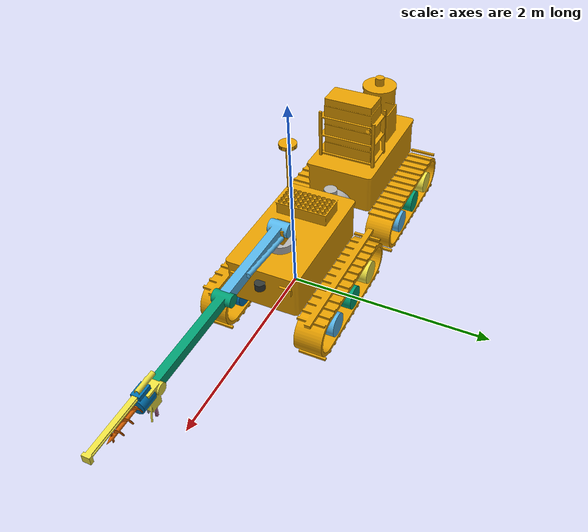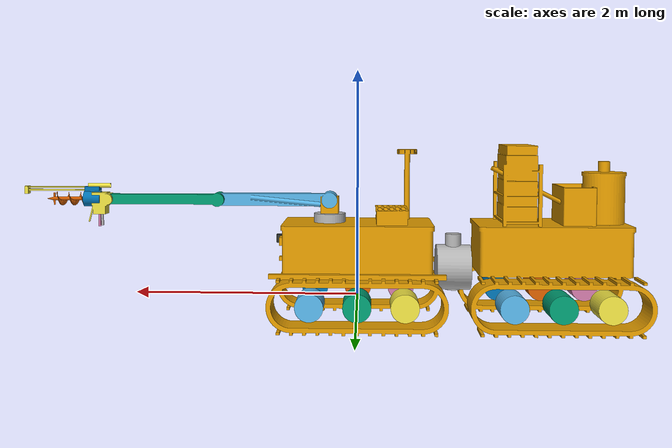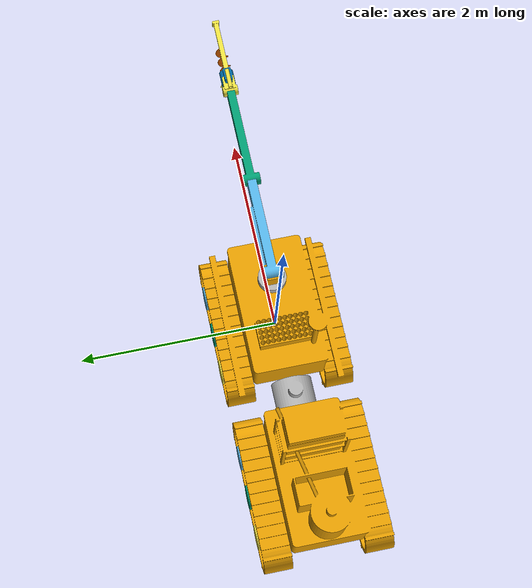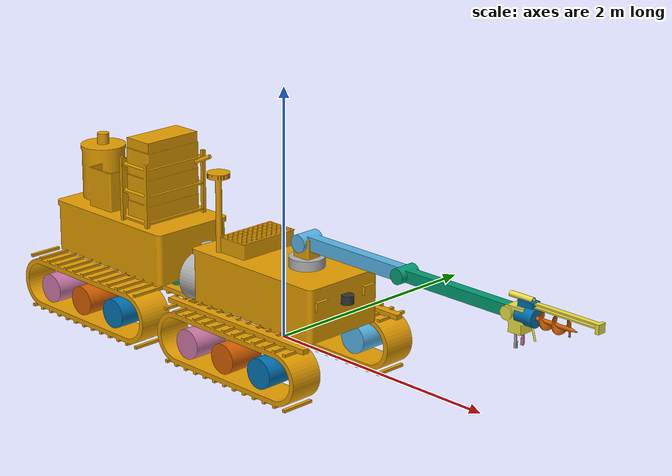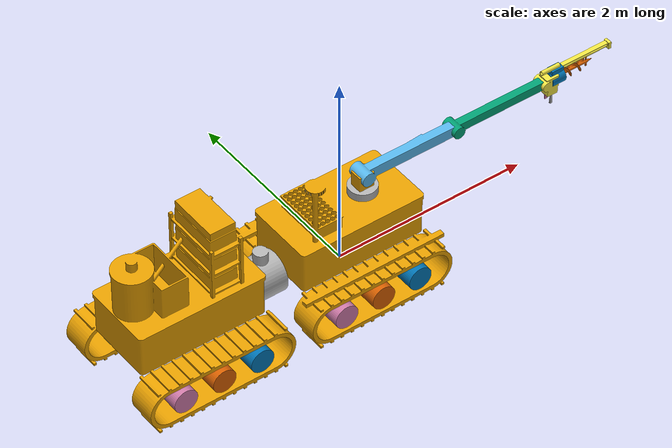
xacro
<?xml version="1.0"?>
<robot name="pahadi" xmlns:xacro="http://www.ros.org/wiki/xacro">
  <xacro:arg name="ns" default="pahadi"/>
  <xacro:arg name="soil_map" default=""/>
  <xacro:arg name="lidar" default="true"/>
  <xacro:arg name="gnss_sigma" default="0.02"/>
  <xacro:property name="ns" value="$(arg ns)"/>
  <xacro:property name="WR" value="0.21"/>
  <xacro:property name="R" value="pahadi"/>
  <xacro:arg name="inspect_cam" default="false"/>
  <xacro:property name="L_UP" value="1.0"/>
  <xacro:property name="L_FORE" value="1.0"/>
  <xacro:include filename="$(find fs_description)/urdf/common.xacro"/>

  <!-- ===================== front module ===================== -->
  <link name="base_link">
    <xacro:box_inertial m="480" x="1.3" y="1.3" z="0.6"><origin xyz="0 0 0.3"/></xacro:box_inertial>
    <xacro:cbox xyz="0 0 0.42" size="1.3 0.72 0.4"/>
    <xacro:mesh_visual robot="${R}" link="base_link"/>
  </link>
  <xacro:wheel effort="250" robot="${R}" name="fl1" parent="base_link" xyz="0.4 0.5 0" r="${WR}" w="0.28" m="12" shape="sphere" rim="fs_steel"/>
  <xacro:wheel effort="250" robot="${R}" name="fl2" parent="base_link" xyz="0.0 0.5 0" r="${WR}" w="0.28" m="12" shape="sphere" rim="fs_steel"/>
  <xacro:wheel effort="250" robot="${R}" name="fl3" parent="base_link" xyz="-0.4 0.5 0" r="${WR}" w="0.28" m="12" shape="sphere" rim="fs_steel"/>
  <xacro:wheel effort="250" robot="${R}" name="fr1" parent="base_link" xyz="0.4 -0.5 0" r="${WR}" w="0.28" m="12" shape="sphere" rim="fs_steel"/>
  <xacro:wheel effort="250" robot="${R}" name="fr2" parent="base_link" xyz="0.0 -0.5 0" r="${WR}" w="0.28" m="12" shape="sphere" rim="fs_steel"/>
  <xacro:wheel effort="250" robot="${R}" name="fr3" parent="base_link" xyz="-0.4 -0.5 0" r="${WR}" w="0.28" m="12" shape="sphere" rim="fs_steel"/>

  <!-- ===================== articulation (steered: +-30 deg yaw, passive +-15 deg roll) ===================== -->
  <joint name="artic_yaw_joint" type="revolute">
    <parent link="base_link"/><child link="artic_link"/>
    <origin xyz="-0.85 0 0.25"/><axis xyz="0 0 1"/>
    <limit lower="-0.52" upper="0.52" effort="20000" velocity="1"/><dynamics damping="50"/>
  </joint>
  <link name="artic_link">
    <inertial><mass value="5"/><inertia ixx="0.05" iyy="0.05" izz="0.05" ixy="0" ixz="0" iyz="0"/></inertial>
    <xacro:mesh_visual robot="${R}" link="artic_link"/>
  </link>
  <joint name="artic_roll_joint" type="revolute">
    <parent link="artic_link"/><child link="rear_link"/>
    <origin xyz="0 0 0"/><axis xyz="1 0 0"/>
    <limit lower="-0.26" upper="0.26" effort="5000" velocity="1"/><dynamics damping="300"/>
  </joint>

  <!-- ===================== rear module (payload) ===================== -->
  <link name="rear_link">
    <!-- chassis 380 kg + 3 spare trays + 75 L water (half of 150 L) + 30 kg seed balls -->
    <xacro:box_inertial m="535" x="1.4" y="1.3" z="0.8"><origin xyz="-0.86 0 0.21"/></xacro:box_inertial>
    <xacro:cbox xyz="-0.85 0 0.17" size="1.3 0.72 0.4"/>
    <xacro:mesh_visual robot="${R}" link="rear_link"/>
  </link>
  <xacro:wheel effort="250" robot="${R}" name="rl1" parent="rear_link" xyz="-0.45 0.5 -0.25" r="${WR}" w="0.28" m="12" shape="sphere" rim="fs_steel"/>
  <xacro:wheel effort="250" robot="${R}" name="rl2" parent="rear_link" xyz="-0.85 0.5 -0.25" r="${WR}" w="0.28" m="12" shape="sphere" rim="fs_steel"/>
  <xacro:wheel effort="250" robot="${R}" name="rl3" parent="rear_link" xyz="-1.25 0.5 -0.25" r="${WR}" w="0.28" m="12" shape="sphere" rim="fs_steel"/>
  <xacro:wheel effort="250" robot="${R}" name="rr1" parent="rear_link" xyz="-0.45 -0.5 -0.25" r="${WR}" w="0.28" m="12" shape="sphere" rim="fs_steel"/>
  <xacro:wheel effort="250" robot="${R}" name="rr2" parent="rear_link" xyz="-0.85 -0.5 -0.25" r="${WR}" w="0.28" m="12" shape="sphere" rim="fs_steel"/>
  <xacro:wheel effort="250" robot="${R}" name="rr3" parent="rear_link" xyz="-1.25 -0.5 -0.25" r="${WR}" w="0.28" m="12" shape="sphere" rim="fs_steel"/>

  <!-- ===================== 4-axis arm ===================== -->
  <joint name="arm_base_joint" type="fixed"><parent link="base_link"/><child link="arm_base_link"/><origin xyz="0.25 0 0.65"/></joint>
  <link name="arm_base_link">
    <inertial><mass value="10"/><inertia ixx="0.05" iyy="0.05" izz="0.05" ixy="0" ixz="0" iyz="0"/></inertial>
    <xacro:mesh_visual robot="${R}" link="arm_base_link"/>
  </link>
  <joint name="arm_yaw_joint" type="revolute">
    <parent link="arm_base_link"/><child link="arm_yaw_link"/>
    <origin xyz="0 0 0.08"/><axis xyz="0 0 1"/>
    <limit lower="-3.3" upper="3.3" effort="3000" velocity="1.2"/><dynamics damping="20"/>
  </joint>
  <link name="arm_yaw_link">
    <inertial><origin xyz="0 0 0.07"/><mass value="15"/><inertia ixx="0.1" iyy="0.1" izz="0.1" ixy="0" ixz="0" iyz="0"/></inertial>
    <xacro:mesh_visual robot="${R}" link="arm_yaw_link"/>
  </link>
  <joint name="arm_shoulder_joint" type="revolute">
    <parent link="arm_yaw_link"/><child link="arm_upper_link"/>
    <origin xyz="0 0 0.12"/><axis xyz="0 1 0"/>
    <limit lower="-1.6" upper="1.6" effort="4000" velocity="1.0"/><dynamics damping="20"/>
  </joint>
  <link name="arm_upper_link">
    <inertial><origin xyz="${L_UP/2} 0 0"/><mass value="20"/><inertia ixx="0.05" iyy="1.2" izz="1.2" ixy="0" ixz="0" iyz="0"/></inertial>
    <xacro:mesh_visual robot="${R}" link="arm_upper_link"/>
  </link>
  <joint name="arm_elbow_joint" type="revolute">
    <parent link="arm_upper_link"/><child link="arm_fore_link"/>
    <origin xyz="${L_UP} 0 0"/><axis xyz="0 1 0"/>
    <limit lower="-2.9" upper="2.9" effort="3000" velocity="1.2"/><dynamics damping="15"/>
  </joint>
  <link name="arm_fore_link">
    <inertial><origin xyz="${L_FORE/2} 0 0"/><mass value="15"/><inertia ixx="0.04" iyy="0.9" izz="0.9" ixy="0" ixz="0" iyz="0"/></inertial>
    <xacro:mesh_visual robot="${R}" link="arm_fore_link"/>
  </link>
  <joint name="arm_wrist_joint" type="revolute">
    <parent link="arm_fore_link"/><child link="arm_wrist_link"/>
    <origin xyz="${L_FORE} 0 0"/><axis xyz="0 1 0"/>
    <limit lower="-2.9" upper="2.9" effort="2000" velocity="1.5"/><dynamics damping="10"/>
  </joint>
  <link name="arm_wrist_link">
    <inertial><origin xyz="0.07 0 0"/><mass value="8"/><inertia ixx="0.02" iyy="0.02" izz="0.02" ixy="0" ixz="0" iyz="0"/></inertial>
    <xacro:mesh_visual robot="${R}" link="arm_wrist_link"/>
  </link>
  <xacro:auger_head robot="${R}" parent="arm_wrist_link" xyz="0.14 0 0" length="0.36" stroke="0.45"
                    feed_axis="1 0 0" spin_axis="1 0 0"/>
  <!-- parallel gripper under the wrist: grasp point at (0.07, 0, -0.18) in arm_wrist_link -->
  <xacro:macro name="grip_finger" params="side y axis">
    <joint name="finger_${side}_joint" type="prismatic">
      <parent link="arm_wrist_link"/><child link="finger_${side}_link"/>
      <origin xyz="0.07 ${y} -0.135"/><axis xyz="0 ${axis} 0"/>
      <limit lower="0" upper="0.02" effort="150" velocity="0.1"/><dynamics damping="2"/>
    </joint>
    <link name="finger_${side}_link">
      <inertial><mass value="0.3"/><inertia ixx="0.0004" iyy="0.0004" izz="0.0001" ixy="0" ixz="0" iyz="0"/></inertial>
      <xacro:mesh_visual robot="${R}" link="finger_${side}_link"/>
    </link>
  </xacro:macro>
  <xacro:grip_finger side="l" y="0.04" axis="-1"/>
  <xacro:grip_finger side="r" y="-0.04" axis="1"/>

  <!-- ===================== sensors ===================== -->
  <xacro:gnss ns="${ns}" parent="base_link" xyz="-0.45 -0.26 1.27" sigma="$(arg gnss_sigma)"/>
  <xacro:imu ns="${ns}" name="imu" parent="base_link" xyz="0 0 0.3"/>
  <xacro:imu ns="${ns}" name="imu_rear" parent="rear_link" xyz="-0.85 0 0.1"/>
  <xacro:if value="$(arg lidar)">
    <xacro:lidar2d ns="${ns}" parent="base_link" xyz="0.68 0 0.5"/>
  </xacro:if>
  <xacro:if value="$(arg inspect_cam)">
    <xacro:inspect_camera ns="${ns}" parent="base_link" xyz="1.7 -2.7 1.9" rpy="0 0.42 2.3" hfov="1.25"/>
  </xacro:if>

  <gazebo>
    <plugin filename="gz-sim-diff-drive-system" name="gz::sim::systems::DiffDrive">
      <left_joint>fl1_joint</left_joint><left_joint>fl2_joint</left_joint><left_joint>fl3_joint</left_joint>
      <left_joint>rl1_joint</left_joint><left_joint>rl2_joint</left_joint><left_joint>rl3_joint</left_joint>
      <right_joint>fr1_joint</right_joint><right_joint>fr2_joint</right_joint><right_joint>fr3_joint</right_joint>
      <right_joint>rr1_joint</right_joint><right_joint>rr2_joint</right_joint><right_joint>rr3_joint</right_joint>
      <wheel_separation>1.0</wheel_separation><wheel_radius>${WR}</wheel_radius>
      <max_linear_acceleration>0.5</max_linear_acceleration><min_linear_acceleration>-0.8</min_linear_acceleration>
      <max_angular_acceleration>0.8</max_angular_acceleration><min_angular_acceleration>-0.8</min_angular_acceleration>
      <max_linear_velocity>0.7</max_linear_velocity><min_linear_velocity>-0.4</min_linear_velocity>
      <max_angular_velocity>0.6</max_angular_velocity><min_angular_velocity>-0.6</min_angular_velocity>
      <topic>/model/${ns}/cmd_vel</topic><odom_topic>/model/${ns}/odometry</odom_topic>
      <tf_topic>/model/${ns}/odometry_tf</tf_topic>
      <frame_id>${ns}/odom</frame_id><child_frame_id>${ns}/base_link</child_frame_id>
      <odom_publish_frequency>30</odom_publish_frequency>
    </plugin>
    <xacro:common_plugins ns="${ns}"/>
    <!-- articulated steering: the navigator commands the yaw angle between the modules -->
    <xacro:pos_controller ns="${ns}" joint="artic_yaw_joint" p="3" vmax="0.4" init="0.0"/>
    <xacro:pos_controller ns="${ns}" joint="arm_yaw_joint" p="3" vmax="0.9" init="0.0"/>
    <xacro:pos_controller ns="${ns}" joint="arm_shoulder_joint" p="3" vmax="0.8" init="-1.35"/>
    <xacro:pos_controller ns="${ns}" joint="arm_elbow_joint" p="3" vmax="0.9" init="2.6"/>
    <xacro:pos_controller ns="${ns}" joint="arm_wrist_joint" p="3" vmax="1.2" init="0.3"/>
    <xacro:pos_controller ns="${ns}" joint="finger_l_joint" p="6" vmax="0.08" init="0.0"/>
    <xacro:pos_controller ns="${ns}" joint="finger_r_joint" p="6" vmax="0.08" init="0.0"/>
    <plugin filename="fs_terramechanics_system" name="fs::Terramechanics">
      <soil_map>$(arg soil_map)</soil_map>
      <topic>/model/${ns}/terramechanics</topic>
      <contact_tolerance>0.06</contact_tolerance>
      <lateral_factor>0.9</lateral_factor>
      <xacro:tm_wheel link="fl1_link" r="${WR}" b="0.28" l="0.37"/>
      <xacro:tm_wheel link="fl2_link" r="${WR}" b="0.28" l="0.37"/>
      <xacro:tm_wheel link="fl3_link" r="${WR}" b="0.28" l="0.37"/>
      <xacro:tm_wheel link="fr1_link" r="${WR}" b="0.28" l="0.37"/>
      <xacro:tm_wheel link="fr2_link" r="${WR}" b="0.28" l="0.37"/>
      <xacro:tm_wheel link="fr3_link" r="${WR}" b="0.28" l="0.37"/>
      <xacro:tm_wheel link="rl1_link" r="${WR}" b="0.28" l="0.37"/>
      <xacro:tm_wheel link="rl2_link" r="${WR}" b="0.28" l="0.37"/>
      <xacro:tm_wheel link="rl3_link" r="${WR}" b="0.28" l="0.37"/>
      <xacro:tm_wheel link="rr1_link" r="${WR}" b="0.28" l="0.37"/>
      <xacro:tm_wheel link="rr2_link" r="${WR}" b="0.28" l="0.37"/>
      <xacro:tm_wheel link="rr3_link" r="${WR}" b="0.28" l="0.37"/>
    </plugin>
    <plugin filename="fs_auger_soil_system" name="fs::AugerSoil">
      <soil_map>$(arg soil_map)</soil_map>
      <feed_joint>auger_feed_joint</feed_joint><spin_joint>auger_spin_joint</spin_joint>
      <tip_link>auger_link</tip_link><reaction_link>arm_wrist_link</reaction_link><tip_offset>0.36 0 0</tip_offset><tool_axis>1 0 0</tool_axis>
      <diameter>0.12</diameter><max_power>2000</max_power><efficiency>0.8</efficiency>
      <max_thrust>2500</max_thrust><max_feed>0.12</max_feed><rpm>110</rpm><max_stroke>0.45</max_stroke>
      <rock_energy>45</rock_energy><pick_efficiency>0.5</pick_efficiency>
      <cmd_topic>/model/${ns}/auger/cmd</cmd_topic><status_topic>/model/${ns}/auger/status</status_topic>
    </plugin>
    <plugin filename="fs_plug_inventory_system" name="fs::PlugInventory">
      <xacro:plug_inventory_begin ns="${ns}"/>
      <!-- active tray on the front module, behind the arm: 5 x 10 cells, 52 mm pitch, long side on y -->
      <carrier><name>tray</name><link>base_link</link><grid><x0>-0.404</x0><y0>-0.234</y0><z>0.655</z><nx>5</nx><ny>10</ny><pitch>0.052</pitch></grid><fill>50</fill></carrier>
      <holder><name>gripper</name><link>arm_wrist_link</link><xyz>0.07 0 -0.24</xyz></holder>
    </plugin>
  </gazebo>
</robot>

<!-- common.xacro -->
<!--
  Shared macros for the ForestStark robots: inertia helpers, materials, wheels, sensors and the
  auger head. Every gz topic is under /model/${ns}/...; fs_bringup's bridge maps them to /${ns}/...
-->
<robot xmlns:xacro="http://www.ros.org/wiki/xacro">

  <xacro:property name="PI" value="3.14159265"/>
  <!-- Wheel/track collisions are nearly frictionless: fs::Terramechanics supplies the soil forces. -->
  <xacro:property name="TYRE_MU" value="0.02"/>

  <material name="fs_yellow"><color rgba="0.886 0.647 0.078 1"/></material>
  <material name="fs_graphite"><color rgba="0.19 0.21 0.20 1"/></material>
  <material name="fs_steel"><color rgba="0.56 0.60 0.61 1"/></material>
  <material name="fs_rubber"><color rgba="0.10 0.11 0.11 1"/></material>
  <material name="fs_blue"><color rgba="0.18 0.42 0.56 1"/></material>
  <material name="fs_leaf"><color rgba="0.31 0.60 0.25 1"/></material>
  <material name="fs_glass"><color rgba="0.66 0.80 0.84 0.35"/></material>
  <material name="fs_solar"><color rgba="0.12 0.20 0.33 1"/></material>
  <material name="fs_skin"><color rgba="0.72 0.50 0.35 1"/></material>
  <material name="fs_cloth"><color rgba="0.23 0.35 0.55 1"/></material>
  <material name="fs_orange"><color rgba="1.0 0.48 0.10 1"/></material>
  <material name="fs_shade"><color rgba="0.21 0.37 0.23 0.6"/></material>

  <xacro:macro name="box_inertial" params="m x y z *origin">
    <inertial>
      <xacro:insert_block name="origin"/>
      <mass value="${m}"/>
      <inertia ixx="${m*(y*y+z*z)/12}" iyy="${m*(x*x+z*z)/12}" izz="${m*(x*x+y*y)/12}" ixy="0" ixz="0" iyz="0"/>
    </inertial>
  </xacro:macro>

  <xacro:macro name="cyl_inertial_y" params="m r l">
    <inertial>
      <mass value="${m}"/>
      <inertia ixx="${m*(3*r*r+l*l)/12}" iyy="${m*r*r/2}" izz="${m*(3*r*r+l*l)/12}" ixy="0" ixz="0" iyz="0"/>
    </inertial>
  </xacro:macro>

  <xacro:macro name="vbox" params="xyz size material rpy:='0 0 0'">
    <visual><origin xyz="${xyz}" rpy="${rpy}"/><geometry><box size="${size}"/></geometry><material name="${material}"/></visual>
  </xacro:macro>
  <xacro:macro name="vcyl" params="xyz r l material rpy:='0 0 0'">
    <visual><origin xyz="${xyz}" rpy="${rpy}"/><geometry><cylinder radius="${r}" length="${l}"/></geometry><material name="${material}"/></visual>
  </xacro:macro>
  <xacro:macro name="cbox" params="xyz size rpy:='0 0 0'">
    <collision><origin xyz="${xyz}" rpy="${rpy}"/><geometry><box size="${size}"/></geometry></collision>
  </xacro:macro>

  <xacro:macro name="mesh_visual" params="robot link">
    <visual><geometry><mesh filename="file://$(find fs_description)/meshes/${robot}/${link}.obj"/></geometry></visual>
  </xacro:macro>

  <!-- effort: the most torque the drive can put on the wheel, N m (free-rolling wheels: bearing drag only) -->
  <xacro:macro name="wheel" params="name parent xyz r w m rim:=fs_yellow shape:=cylinder robot:='' effort:=6000">
    <joint name="${name}_joint" type="continuous">
      <parent link="${parent}"/><child link="${name}_link"/>
      <origin xyz="${xyz}"/><axis xyz="0 1 0"/>
      <limit effort="${effort}" velocity="40"/><dynamics damping="0.5"/>
    </joint>
    <link name="${name}_link">
      <xacro:cyl_inertial_y m="${m}" r="${r}" l="${w}"/>
      <xacro:if value="${robot != ''}"><xacro:mesh_visual robot="${robot}" link="${name}_link"/></xacro:if>
      <xacro:unless value="${robot != ''}">
        <visual><origin rpy="${PI/2} 0 0"/><geometry><cylinder radius="${r}" length="${w}"/></geometry><material name="fs_rubber"/></visual>
        <visual><origin rpy="${PI/2} 0 0"/><geometry><cylinder radius="${r*0.62}" length="${w*1.04}"/></geometry><material name="${rim}"/></visual>
      </xacro:unless>
      <collision>
        <xacro:if value="${shape == 'sphere'}"><geometry><sphere radius="${r}"/></geometry></xacro:if>
        <xacro:unless value="${shape == 'sphere'}"><origin rpy="${PI/2} 0 0"/><geometry><cylinder radius="${r}" length="${w}"/></geometry></xacro:unless>
      </collision>
    </link>
    <gazebo reference="${name}_link"><mu1>${TYRE_MU}</mu1><mu2>${TYRE_MU}</mu2><kp>2e6</kp><kd>1e4</kd></gazebo>
  </xacro:macro>

  <xacro:macro name="tm_wheel" params="link r b l">
    <wheel><link>${link}</link><radius>${r}</radius><width>${b}</width><contact_length>${l}</contact_length><axis>0 1 0</axis></wheel>
  </xacro:macro>

  <xacro:macro name="gnss" params="ns parent xyz sigma:=0.02">
    <joint name="gnss_joint" type="fixed"><parent link="${parent}"/><child link="gnss_link"/><origin xyz="${xyz}"/></joint>
    <link name="gnss_link">
      <visual><geometry><cylinder radius="0.09" length="0.03"/></geometry><material name="fs_graphite"/></visual>
    </link>
    <gazebo reference="gnss_link">
      <sensor name="gnss" type="navsat">
        <always_on>1</always_on><update_rate>10</update_rate><topic>/model/${ns}/gnss</topic>
        <gz_frame_id>${ns}/gnss_link</gz_frame_id>
        <navsat>
          <position_sensing>
            <!-- gz applies horizontal position noise to latitude/longitude in DEGREES: convert from metres. -->
            <horizontal><noise type="gaussian"><mean>0</mean><stddev>${sigma/111320.0}</stddev></noise></horizontal>
            <vertical><noise type="gaussian"><mean>0</mean><stddev>${sigma*2}</stddev></noise></vertical>
          </position_sensing>
          <velocity_sensing>
            <horizontal><noise type="gaussian"><mean>0</mean><stddev>0.02</stddev></noise></horizontal>
            <vertical><noise type="gaussian"><mean>0</mean><stddev>0.04</stddev></noise></vertical>
          </velocity_sensing>
        </navsat>
      </sensor>
    </gazebo>
  </xacro:macro>

  <xacro:macro name="imu" params="ns name parent xyz">
    <joint name="${name}_joint" type="fixed"><parent link="${parent}"/><child link="${name}_link"/><origin xyz="${xyz}"/></joint>
    <link name="${name}_link"/>
    <gazebo reference="${name}_link">
      <sensor name="${name}" type="imu">
        <always_on>1</always_on><update_rate>100</update_rate><topic>/model/${ns}/${name}</topic>
        <gz_frame_id>${ns}/${name}_link</gz_frame_id>
        <imu>
          <angular_velocity>
            <x><noise type="gaussian"><mean>0</mean><stddev>0.002</stddev><bias_mean>0.0005</bias_mean></noise></x>
            <y><noise type="gaussian"><mean>0</mean><stddev>0.002</stddev><bias_mean>0.0005</bias_mean></noise></y>
            <z><noise type="gaussian"><mean>0</mean><stddev>0.002</stddev><bias_mean>0.0005</bias_mean></noise></z>
          </angular_velocity>
          <linear_acceleration>
            <x><noise type="gaussian"><mean>0</mean><stddev>0.02</stddev></noise></x>
            <y><noise type="gaussian"><mean>0</mean><stddev>0.02</stddev></noise></y>
            <z><noise type="gaussian"><mean>0</mean><stddev>0.02</stddev></noise></z>
          </linear_acceleration>
        </imu>
      </sensor>
    </gazebo>
  </xacro:macro>

  <!-- Planar safety lidar. Needs rendering (gpu_lidar); off with lidar:=false. -->
  <!-- Planar lidar. name/topic let one robot carry several (Jaal front and rear). -->
  <xacro:macro name="lidar2d" params="ns parent xyz rpy:='0 0 0' name:=lidar topic:=scan fov:=4.71 samples:=540 max_range:=20.0">
    <joint name="${name}_joint" type="fixed"><parent link="${parent}"/><child link="${name}_link"/><origin xyz="${xyz}" rpy="${rpy}"/></joint>
    <link name="${name}_link">
      <visual><geometry><cylinder radius="0.05" length="0.07"/></geometry><material name="fs_graphite"/></visual>
    </link>
    <gazebo reference="${name}_link">
      <sensor name="${name}" type="gpu_lidar">
        <always_on>1</always_on><update_rate>10</update_rate><topic>/model/${ns}/${topic}</topic>
        <gz_frame_id>${ns}/${name}_link</gz_frame_id>
        <lidar>
          <scan><horizontal><samples>${samples}</samples><resolution>1</resolution>
            <min_angle>${-fov/2}</min_angle><max_angle>${fov/2}</max_angle></horizontal></scan>
          <range><min>0.3</min><max>${max_range}</max><resolution>0.01</resolution></range>
          <noise type="gaussian"><mean>0</mean><stddev>0.01</stddev></noise>
        </lidar>
      </sensor>
    </gazebo>
  </xacro:macro>

  <!-- Auger head: prismatic feed (positive = down along the tool), spin joint, auger link whose
       origin is at the feed carrier; the bit tip is at feed_axis * length. -->
  <xacro:macro name="auger_head" params="robot parent xyz rpy:='0 0 0' length stroke feed_axis:='0 0 -1' spin_axis:='0 0 1' mesh:='auger_link'">
    <joint name="auger_feed_joint" type="prismatic">
      <parent link="${parent}"/><child link="auger_feed_link"/>
      <origin xyz="${xyz}" rpy="${rpy}"/><axis xyz="${feed_axis}"/>
      <limit lower="0" upper="${stroke}" effort="20000" velocity="0.6"/><dynamics damping="50"/>
    </joint>
    <link name="auger_feed_link">
      <inertial><mass value="8"/><inertia ixx="0.05" iyy="0.05" izz="0.05" ixy="0" ixz="0" iyz="0"/></inertial>
      <xacro:mesh_visual robot="${robot}" link="auger_feed_link"/>
    </link>
    <joint name="auger_spin_joint" type="continuous">
      <parent link="auger_feed_link"/><child link="auger_link"/>
      <axis xyz="${spin_axis}"/><limit effort="3000" velocity="30"/>
    </joint>
    <link name="auger_link">
      <inertial><mass value="10"/><inertia ixx="0.3" iyy="0.3" izz="0.3" ixy="0" ixz="0" iyz="0"/></inertial>
      <xacro:mesh_visual robot="${robot}" link="${mesh}"/>
    </link>
  </xacro:macro>

  <!-- Duckbill planting jaw on a prismatic feed, two hinged half-jaws, tamp ring on its own feed.
       Plugs are carried in the closed jaw; opening it in the hole releases the plug. -->
  <xacro:macro name="duckbill_head" params="robot parent xyz stroke tamp_xyz tamp_stroke">
    <joint name="duckbill_feed_joint" type="prismatic">
      <parent link="${parent}"/><child link="duckbill_feed_link"/>
      <origin xyz="${xyz}"/><axis xyz="0 0 -1"/>
      <limit lower="0" upper="${stroke}" effort="5000" velocity="0.8"/><dynamics damping="30"/>
    </joint>
    <link name="duckbill_feed_link">
      <inertial><origin xyz="0 0 -0.05"/><mass value="6"/><inertia ixx="0.03" iyy="0.03" izz="0.01" ixy="0" ixz="0" iyz="0"/></inertial>
      <xacro:mesh_visual robot="${robot}" link="duckbill_feed_link"/>
    </link>
    <xacro:macro name="jaw" params="side y axis">
      <joint name="jaw_${side}_joint" type="revolute">
        <parent link="duckbill_feed_link"/><child link="jaw_${side}_link"/>
        <origin xyz="0 ${y} -0.10"/><axis xyz="${axis} 0 0"/>
        <limit lower="0" upper="0.6" effort="500" velocity="2"/><dynamics damping="2"/>
      </joint>
      <link name="jaw_${side}_link">
        <inertial><origin xyz="0 0 -0.15"/><mass value="1.5"/><inertia ixx="0.012" iyy="0.012" izz="0.001" ixy="0" ixz="0" iyz="0"/></inertial>
        <xacro:mesh_visual robot="${robot}" link="jaw_${side}_link"/>
      </link>
    </xacro:macro>
    <xacro:jaw side="l" y="0.046" axis="1"/>
    <xacro:jaw side="r" y="-0.046" axis="-1"/>
    <joint name="tamp_joint" type="prismatic">
      <parent link="${parent}"/><child link="tamp_link"/>
      <origin xyz="${tamp_xyz}"/><axis xyz="0 0 -1"/>
      <limit lower="0" upper="${tamp_stroke}" effort="3000" velocity="0.8"/><dynamics damping="30"/>
    </joint>
    <link name="tamp_link">
      <inertial><mass value="3"/><inertia ixx="0.01" iyy="0.01" izz="0.02" ixy="0" ixz="0" iyz="0"/></inertial>
      <xacro:mesh_visual robot="${robot}" link="tamp_link"/>
    </link>
  </xacro:macro>

  <!-- fs::PlugInventory: plugs as visuals riding on their carrier links; see fs_gazebo/src/PlugInventory.cc -->
  <xacro:macro name="plug_inventory_begin" params="ns">
    <plug_mesh>file://$(find fs_description)/meshes/plug.obj</plug_mesh>
    <cmd_topic>/model/${ns}/plugs/cmd</cmd_topic><status_topic>/model/${ns}/plugs/status</status_topic>
  </xacro:macro>

  <xacro:macro name="person" params="parent name xyz robot rpy:='0 0 0'">
    <joint name="${name}_joint" type="fixed"><parent link="${parent}"/><child link="${name}_link"/><origin xyz="${xyz}" rpy="${rpy}"/></joint>
    <link name="${name}_link"><xacro:mesh_visual robot="${robot}" link="${name}_link"/></link>
  </xacro:macro>

  <!-- Optional inspection camera (inspect_cam:=true): saves PNG frames to $(arg inspect_path) so a
       headless run can be looked at afterwards. Needs rendering. -->
  <xacro:arg name="inspect_path" default="/tmp/fs_inspect"/>
  <xacro:macro name="inspect_camera" params="ns parent xyz rpy hfov:=1.1">
    <joint name="inspect_cam_joint" type="fixed"><parent link="${parent}"/><child link="inspect_cam_link"/><origin xyz="${xyz}" rpy="${rpy}"/></joint>
    <link name="inspect_cam_link"/>
    <gazebo reference="inspect_cam_link">
      <sensor name="inspect_cam" type="camera">
        <always_on>1</always_on><update_rate>2</update_rate><topic>/model/${ns}/inspect_cam</topic>
        <camera><horizontal_fov>${hfov}</horizontal_fov><image><width>960</width><height>600</height></image>
          <clip><near>0.05</near><far>60</far></clip>
          <save enabled="true"><path>$(arg inspect_path)</path></save></camera>
      </sensor>
    </gazebo>
  </xacro:macro>

  <!-- Velocity-mode joint position controller: topic /model/${ns}/joint/${joint}/cmd_pos. -->
  <xacro:macro name="pos_controller" params="ns joint p:=2.0 vmax:=0.8 init:=0.0">
    <plugin filename="gz-sim-joint-position-controller-system" name="gz::sim::systems::JointPositionController">
      <joint_name>${joint}</joint_name>
      <topic>/model/${ns}/joint/${joint}/cmd_pos</topic>
      <use_velocity_commands>true</use_velocity_commands>
      <p_gain>${p}</p_gain><i_gain>0</i_gain><d_gain>0</d_gain>
      <cmd_max>${vmax}</cmd_max><cmd_min>${-vmax}</cmd_min>
      <initial_position>${init}</initial_position>
    </plugin>
  </xacro:macro>

  <xacro:macro name="common_plugins" params="ns">
    <plugin filename="fs_joint_state_rate_system" name="fs::JointStateRate">
      <topic>/model/${ns}/joint_states</topic><update_rate>30</update_rate>
    </plugin>
    <!-- Ground truth for evaluation only; the autonomy stack never reads it. -->
    <plugin filename="gz-sim-odometry-publisher-system" name="gz::sim::systems::OdometryPublisher">
      <odom_frame>map</odom_frame><robot_base_frame>${ns}/base_link</robot_base_frame>
      <odom_topic>/model/${ns}/ground_truth</odom_topic><odom_publish_frequency>20</odom_publish_frequency>
      <dimensions>3</dimensions><tf_topic>/model/${ns}/ground_truth_tf</tf_topic>
    </plugin>
  </xacro:macro>
</robot>
